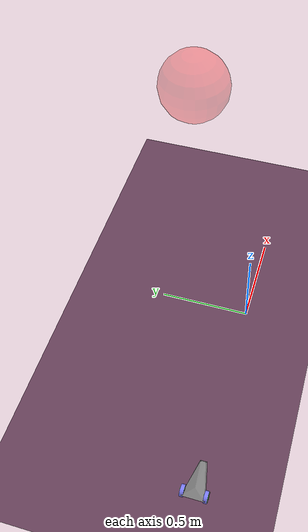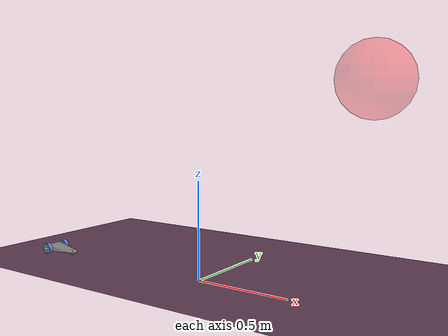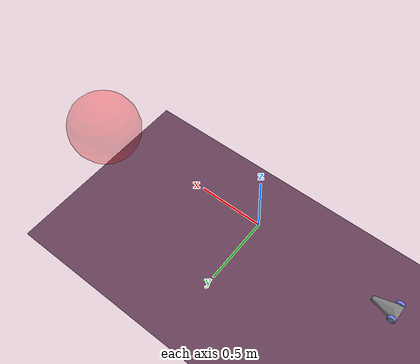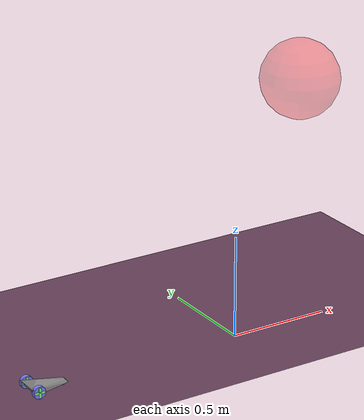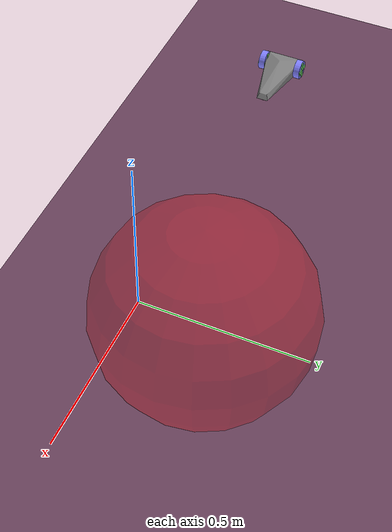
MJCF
<mujoco>
  <compiler autolimits="true"/>
  <visual>
    <headlight diffuse="0.6 0.6 0.6" ambient="0.3 0.3 0.3" specular="0 0 0"/>
    <rgba haze="0.15 0.25 0.35 1"/>
    <global fovy="120" azimuth="-20" elevation="-40"/>
  </visual>
  <asset>
    <texture name="grid" type="2d" builtin="checker" width="512" height="512" rgb1=".6 .2 .3" rgb2=".2 .3 .4"/>
    <material name="grid" texture="grid" texrepeat="1 1" texuniform="true" reflectance=".2"/>
    <mesh name="chasis" scale=".01 .006 .0015"
      vertex=" 9   2   0
              -10  10  10
               9  -2   0
               10  3  -10
               10 -3  -10
              -8   10 -10
              -10 -10  10
              -8  -10 -10
              -5   0   20"/>
  </asset>

  <default>
    <joint damping=".03" actuatorfrcrange="-0.5 0.5"/>
    <default class="wheel">
      <geom type="cylinder" size=".03 .01" rgba=".5 .5 1 1"/>
    </default>
    <default class="decor">
      <site type="box" rgba=".5 1 .5 1"/>
    </default>
  </default>

  <worldbody>

    <geom type="plane" size="3 3 .01" material="grid"/>

    <body name="car" pos="-1 0 .03">
      <freejoint/>
      <light name="top light" pos="0 0 2" mode="trackcom" diffuse=".4 .4 .4"/>

      <geom name="chasis" type="mesh" mesh="chasis"/>
      <geom name="front wheel" pos=".08 0 -.015" type="sphere" size=".015" condim="1" priority="1"/>
      <light name="front light" pos=".1 0 .02" dir="2 0 -1" diffuse="1 1 1"/>
      <body name="left wheel" pos="-.07 .06 0" zaxis="0 1 0">
        <joint name="left"/>
        <geom class="wheel"/>
        <site class="decor" size=".006 .025 .012"/>
        <site class="decor" size=".025 .006 .012"/>
      </body>
      <body name="right wheel" pos="-.07 -.06 0" zaxis="0 1 0">
        <joint name="right"/>
        <geom class="wheel"/>
        <site class="decor" size=".006 .025 .012"/>
        <site class="decor" size=".025 .006 .012"/>
      </body>
    </body>

     <body name="xd_point" pos=".7 0.5 1.">
      <!-- 3 degrees of freedom -->
      <joint name="B_point_x" type="slide" axis="1 0 0" damping=".1"/>
      <joint name="B_point_y" type="slide" axis="0 1 0" damping=".1"/>
      <joint name="B_point_z" type="slide" axis="0 0 1" damping=".1"/>

      <!-- Visual red sphere -->
      <geom type="sphere" size="0.2" rgba="1 0 0 0.3" contype="0" conaffinity="0"/>
    </body>

  </worldbody>

  <tendon>
    <fixed name="forward">
      <joint joint="left" coef=".5"/>
      <joint joint="right" coef=".5"/>
    </fixed>
    <fixed name="turn">
      <joint joint="left" coef="-.5"/>
      <joint joint="right" coef=".5"/>
    </fixed>
  </tendon>

  <actuator>
    <motor name="forward" tendon="forward" ctrlrange="-1 1"/>
    <motor name="turn" tendon="turn" ctrlrange="-1 1"/>
  </actuator>

  <sensor>
    <jointactuatorfrc name="right" joint="right"/>
    <jointactuatorfrc name="left" joint="left"/>
  </sensor>

  <actuator>
    <!-- Position actuators on each axis -->
    <position name="RB_x" joint="B_point_x" kp="0.5" kv="0.1"/>
    <position name="RB_y" joint="B_point_y" kp="0.5" kv="0.1"/>
    <position name="RB_z" joint="B_point_z" kp="10.0" kv="0.2"/>
  </actuator>

</mujoco>
